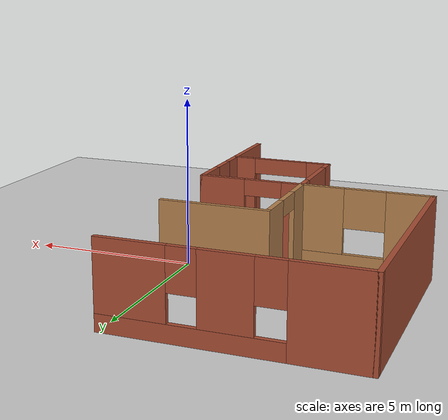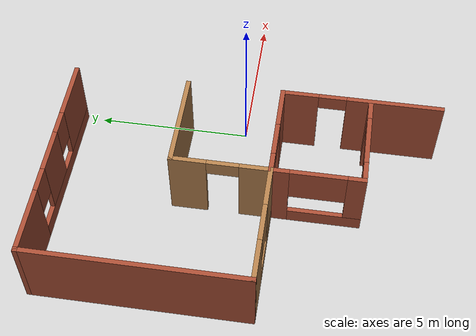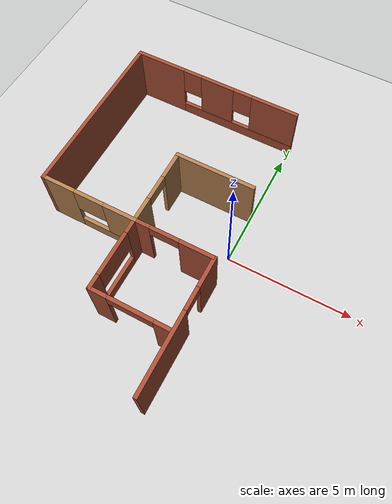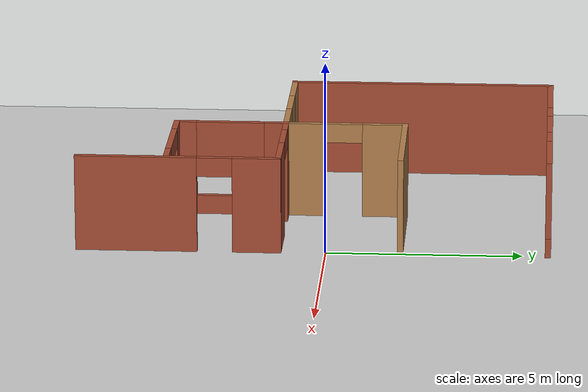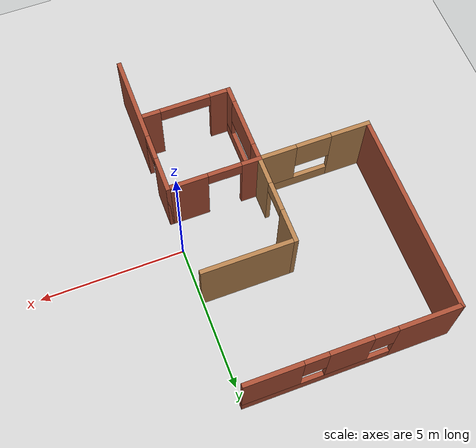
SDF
<sdf version="1.7">
 <world name="default">
  <model name="ground_plane">
   <static>1</static>
   <link name="link">
    <collision name="collision">
     <geometry><plane><normal>0 0 1</normal><size>100 100</size></plane></geometry>
     <surface>
      <contact><collide_bitmask>65535</collide_bitmask></contact>
      <friction><ode><mu>100</mu><mu2>50</mu2></ode></friction>
     </surface>
    </collision>
    <visual name="visual">
     <cast_shadows>0</cast_shadows>
     <geometry><plane><normal>0 0 1</normal><size>100 100</size></plane></geometry>
     <material>
      <script><uri>file://media/materials/scripts/gazebo.material</uri><name>Gazebo/Grey</name></script>
     </material>
    </visual>
   </link>
  </model>
  <model name="basic_house_model">
   <link name="Wall_13">
    <pose>-6.05 2.55 0 0 0 -1.5708</pose>
    <visual name="Wall_13_Visual">
     <pose>0 0 1.25 0 -0 0</pose>
     <geometry><box><size>7 0.15 2.5</size></box></geometry>
     <material>
      <script><uri>file://media/materials/scripts/gazebo.material</uri><name>Gazebo/Bricks</name></script>
      <ambient>1 1 1 1</ambient>
      <shader type="pixel"/>
     </material>
     <meta><layer>0</layer></meta>
    </visual>
    <collision name="Wall_13_Collision">
     <pose>0 0 1.25 0 -0 0</pose>
     <geometry><box><size>7 0.15 2.5</size></box></geometry>
     <surface>
      <friction>
       <ode><mu>1</mu><mu2>1</mu2><fdir1>0 0 0</fdir1><slip1>0</slip1><slip2>0</slip2></ode>
       <torsional>
        <coefficient>1</coefficient>
        <patch_radius>0</patch_radius>
        <surface_radius>0</surface_radius>
        <use_patch_radius>1</use_patch_radius>
        <ode><slip>0</slip></ode>
       </torsional>
      </friction>
      <bounce><restitution_coefficient>0</restitution_coefficient><threshold>1e+06</threshold></bounce>
      <contact>
       <collide_without_contact>0</collide_without_contact>
       <collide_without_contact_bitmask>1</collide_without_contact_bitmask>
       <collide_bitmask>1</collide_bitmask>
       <ode>
        <soft_cfm>0</soft_cfm>
        <soft_erp>0.2</soft_erp>
        <kp>1e+13</kp>
        <kd>1</kd>
        <max_vel>0.01</max_vel>
        <min_depth>0</min_depth>
       </ode>
       <bullet>
        <split_impulse>1</split_impulse>
        <split_impulse_penetration_threshold>-0.01</split_impulse_penetration_threshold>
        <soft_cfm>0</soft_cfm>
        <soft_erp>0.2</soft_erp>
        <kp>1e+13</kp>
        <kd>1</kd>
       </bullet>
      </contact>
     </surface>
    </collision>
   </link>
   <link name="Wall_14">
    <pose>-4.125 -0.875 0 0 -0 0</pose>
    <visual name="Wall_14_Visual_0">
     <pose>-1.30014 0 1.25 0 -0 0</pose>
     <geometry><box><size>1.39972 0.15 2.5</size></box></geometry>
     <material>
      <script><uri>file://media/materials/scripts/gazebo.material</uri><name>Gazebo/Wood</name></script>
      <ambient>1 1 1 1</ambient>
      <shader type="pixel"/>
     </material>
     <meta><layer>0</layer></meta>
    </visual>
    <visual name="Wall_14_Visual_1">
     <pose>0.699859 0 0.25 0 -0 0</pose>
     <geometry><box><size>2.60028 0.15 0.5</size></box></geometry>
     <material>
      <script><uri>file://media/materials/scripts/gazebo.material</uri><name>Gazebo/Wood</name></script>
      <ambient>1 1 1 1</ambient>
      <shader type="pixel"/>
     </material>
     <meta><layer>0</layer></meta>
    </visual>
    <visual name="Wall_14_Visual_2">
     <pose>1.31418 0 1.5 0 -0 0</pose>
     <geometry><box><size>1.37164 0.15 2</size></box></geometry>
     <material>
      <script><uri>file://media/materials/scripts/gazebo.material</uri><name>Gazebo/Wood</name></script>
      <ambient>1 1 1 1</ambient>
      <shader type="pixel"/>
     </material>
     <meta><layer>0</layer></meta>
    </visual>
    <visual name="Wall_14_Visual_3">
     <pose>0.014039 0 1.9 0 -0 0</pose>
     <geometry><box><size>1.22864 0.15 1.2</size></box></geometry>
     <material>
      <script><uri>file://media/materials/scripts/gazebo.material</uri><name>Gazebo/Wood</name></script>
      <ambient>1 1 1 1</ambient>
      <shader type="pixel"/>
     </material>
     <meta><layer>0</layer></meta>
    </visual>
    <collision name="Wall_14_Collision_0">
     <pose>-1.30014 0 1.25 0 -0 0</pose>
     <geometry><box><size>1.39972 0.15 2.5</size></box></geometry>
     <surface>
      <friction>
       <ode><mu>1</mu><mu2>1</mu2><fdir1>0 0 0</fdir1><slip1>0</slip1><slip2>0</slip2></ode>
       <torsional>
        <coefficient>1</coefficient>
        <patch_radius>0</patch_radius>
        <surface_radius>0</surface_radius>
        <use_patch_radius>1</use_patch_radius>
        <ode><slip>0</slip></ode>
       </torsional>
      </friction>
      <bounce><restitution_coefficient>0</restitution_coefficient><threshold>1e+06</threshold></bounce>
      <contact>
       <collide_without_contact>0</collide_without_contact>
       <collide_without_contact_bitmask>1</collide_without_contact_bitmask>
       <collide_bitmask>1</collide_bitmask>
       <ode>
        <soft_cfm>0</soft_cfm>
        <soft_erp>0.2</soft_erp>
        <kp>1e+13</kp>
        <kd>1</kd>
        <max_vel>0.01</max_vel>
        <min_depth>0</min_depth>
       </ode>
       <bullet>
        <split_impulse>1</split_impulse>
        <split_impulse_penetration_threshold>-0.01</split_impulse_penetration_threshold>
        <soft_cfm>0</soft_cfm>
        <soft_erp>0.2</soft_erp>
        <kp>1e+13</kp>
        <kd>1</kd>
       </bullet>
      </contact>
     </surface>
    </collision>
    <collision name="Wall_14_Collision_1">
     <pose>0.699859 0 0.25 0 -0 0</pose>
     <geometry><box><size>2.60028 0.15 0.5</size></box></geometry>
     <surface>
      <friction>
       <ode><mu>1</mu><mu2>1</mu2><fdir1>0 0 0</fdir1><slip1>0</slip1><slip2>0</slip2></ode>
       <torsional>
        <coefficient>1</coefficient>
        <patch_radius>0</patch_radius>
        <surface_radius>0</surface_radius>
        <use_patch_radius>1</use_patch_radius>
        <ode><slip>0</slip></ode>
       </torsional>
      </friction>
      <bounce><restitution_coefficient>0</restitution_coefficient><threshold>1e+06</threshold></bounce>
      <contact>
       <collide_without_contact>0</collide_without_contact>
       <collide_without_contact_bitmask>1</collide_without_contact_bitmask>
       <collide_bitmask>1</collide_bitmask>
       <ode>
        <soft_cfm>0</soft_cfm>
        <soft_erp>0.2</soft_erp>
        <kp>1e+13</kp>
        <kd>1</kd>
        <max_vel>0.01</max_vel>
        <min_depth>0</min_depth>
       </ode>
       <bullet>
        <split_impulse>1</split_impulse>
        <split_impulse_penetration_threshold>-0.01</split_impulse_penetration_threshold>
        <soft_cfm>0</soft_cfm>
        <soft_erp>0.2</soft_erp>
        <kp>1e+13</kp>
        <kd>1</kd>
       </bullet>
      </contact>
     </surface>
    </collision>
    <collision name="Wall_14_Collision_2">
     <pose>1.31418 0 1.5 0 -0 0</pose>
     <geometry><box><size>1.37164 0.15 2</size></box></geometry>
     <surface>
      <friction>
       <ode><mu>1</mu><mu2>1</mu2><fdir1>0 0 0</fdir1><slip1>0</slip1><slip2>0</slip2></ode>
       <torsional>
        <coefficient>1</coefficient>
        <patch_radius>0</patch_radius>
        <surface_radius>0</surface_radius>
        <use_patch_radius>1</use_patch_radius>
        <ode><slip>0</slip></ode>
       </torsional>
      </friction>
      <bounce><restitution_coefficient>0</restitution_coefficient><threshold>1e+06</threshold></bounce>
      <contact>
       <collide_without_contact>0</collide_without_contact>
       <collide_without_contact_bitmask>1</collide_without_contact_bitmask>
       <collide_bitmask>1</collide_bitmask>
       <ode>
        <soft_cfm>0</soft_cfm>
        <soft_erp>0.2</soft_erp>
        <kp>1e+13</kp>
        <kd>1</kd>
        <max_vel>0.01</max_vel>
        <min_depth>0</min_depth>
       </ode>
       <bullet>
        <split_impulse>1</split_impulse>
        <split_impulse_penetration_threshold>-0.01</split_impulse_penetration_threshold>
        <soft_cfm>0</soft_cfm>
        <soft_erp>0.2</soft_erp>
        <kp>1e+13</kp>
        <kd>1</kd>
       </bullet>
      </contact>
     </surface>
    </collision>
    <collision name="Wall_14_Collision_3">
     <pose>0.014039 0 1.9 0 -0 0</pose>
     <geometry><box><size>1.22864 0.15 1.2</size></box></geometry>
     <surface>
      <friction>
       <ode><mu>1</mu><mu2>1</mu2><fdir1>0 0 0</fdir1><slip1>0</slip1><slip2>0</slip2></ode>
       <torsional>
        <coefficient>1</coefficient>
        <patch_radius>0</patch_radius>
        <surface_radius>0</surface_radius>
        <use_patch_radius>1</use_patch_radius>
        <ode><slip>0</slip></ode>
       </torsional>
      </friction>
      <bounce><restitution_coefficient>0</restitution_coefficient><threshold>1e+06</threshold></bounce>
      <contact>
       <collide_without_contact>0</collide_without_contact>
       <collide_without_contact_bitmask>1</collide_without_contact_bitmask>
       <collide_bitmask>1</collide_bitmask>
       <ode>
        <soft_cfm>0</soft_cfm>
        <soft_erp>0.2</soft_erp>
        <kp>1e+13</kp>
        <kd>1</kd>
        <max_vel>0.01</max_vel>
        <min_depth>0</min_depth>
       </ode>
       <bullet>
        <split_impulse>1</split_impulse>
        <split_impulse_penetration_threshold>-0.01</split_impulse_penetration_threshold>
        <soft_cfm>0</soft_cfm>
        <soft_erp>0.2</soft_erp>
        <kp>1e+13</kp>
        <kd>1</kd>
       </bullet>
      </contact>
     </surface>
    </collision>
   </link>
   <link name="Wall_15">
    <pose>-2.2 0.675 0 0 -0 1.5708</pose>
    <visual name="Wall_15_Visual_0">
     <pose>-1.10266 0 1.25 0 -0 0</pose>
     <geometry><box><size>1.04468 0.15 2.5</size></box></geometry>
     <material>
      <script><uri>file://media/materials/scripts/gazebo.material</uri><name>Gazebo/Wood</name></script>
      <ambient>1 1 1 1</ambient>
      <shader type="pixel"/>
     </material>
     <meta><layer>0</layer></meta>
    </visual>
    <visual name="Wall_15_Visual_1">
     <pose>1.03215 0 1.25 0 -0 0</pose>
     <geometry><box><size>1.1857 0.15 2.5</size></box></geometry>
     <material>
      <script><uri>file://media/materials/scripts/gazebo.material</uri><name>Gazebo/Wood</name></script>
      <ambient>1 1 1 1</ambient>
      <shader type="pixel"/>
     </material>
     <meta><layer>0</layer></meta>
    </visual>
    <visual name="Wall_15_Visual_2">
     <pose>-0.070509 0 2.25 0 -0 0</pose>
     <geometry><box><size>1.01962 0.15 0.5</size></box></geometry>
     <material>
      <script><uri>file://media/materials/scripts/gazebo.material</uri><name>Gazebo/Wood</name></script>
      <ambient>1 1 1 1</ambient>
      <shader type="pixel"/>
     </material>
     <meta><layer>0</layer></meta>
    </visual>
    <collision name="Wall_15_Collision_0">
     <pose>-1.10266 0 1.25 0 -0 0</pose>
     <geometry><box><size>1.04468 0.15 2.5</size></box></geometry>
     <surface>
      <friction>
       <ode><mu>1</mu><mu2>1</mu2><fdir1>0 0 0</fdir1><slip1>0</slip1><slip2>0</slip2></ode>
       <torsional>
        <coefficient>1</coefficient>
        <patch_radius>0</patch_radius>
        <surface_radius>0</surface_radius>
        <use_patch_radius>1</use_patch_radius>
        <ode><slip>0</slip></ode>
       </torsional>
      </friction>
      <bounce><restitution_coefficient>0</restitution_coefficient><threshold>1e+06</threshold></bounce>
      <contact>
       <collide_without_contact>0</collide_without_contact>
       <collide_without_contact_bitmask>1</collide_without_contact_bitmask>
       <collide_bitmask>1</collide_bitmask>
       <ode>
        <soft_cfm>0</soft_cfm>
        <soft_erp>0.2</soft_erp>
        <kp>1e+13</kp>
        <kd>1</kd>
        <max_vel>0.01</max_vel>
        <min_depth>0</min_depth>
       </ode>
       <bullet>
        <split_impulse>1</split_impulse>
        <split_impulse_penetration_threshold>-0.01</split_impulse_penetration_threshold>
        <soft_cfm>0</soft_cfm>
        <soft_erp>0.2</soft_erp>
        <kp>1e+13</kp>
        <kd>1</kd>
       </bullet>
      </contact>
     </surface>
    </collision>
    <collision name="Wall_15_Collision_1">
     <pose>1.03215 0 1.25 0 -0 0</pose>
     <geometry><box><size>1.1857 0.15 2.5</size></box></geometry>
     <surface>
      <friction>
       <ode><mu>1</mu><mu2>1</mu2><fdir1>0 0 0</fdir1><slip1>0</slip1><slip2>0</slip2></ode>
       <torsional>
        <coefficient>1</coefficient>
        <patch_radius>0</patch_radius>
        <surface_radius>0</surface_radius>
        <use_patch_radius>1</use_patch_radius>
        <ode><slip>0</slip></ode>
       </torsional>
      </friction>
      <bounce><restitution_coefficient>0</restitution_coefficient><threshold>1e+06</threshold></bounce>
      <contact>
       <collide_without_contact>0</collide_without_contact>
       <collide_without_contact_bitmask>1</collide_without_contact_bitmask>
       <collide_bitmask>1</collide_bitmask>
       <ode>
        <soft_cfm>0</soft_cfm>
        <soft_erp>0.2</soft_erp>
        <kp>1e+13</kp>
        <kd>1</kd>
        <max_vel>0.01</max_vel>
        <min_depth>0</min_depth>
       </ode>
       <bullet>
        <split_impulse>1</split_impulse>
        <split_impulse_penetration_threshold>-0.01</split_impulse_penetration_threshold>
        <soft_cfm>0</soft_cfm>
        <soft_erp>0.2</soft_erp>
        <kp>1e+13</kp>
        <kd>1</kd>
       </bullet>
      </contact>
     </surface>
    </collision>
    <collision name="Wall_15_Collision_2">
     <pose>-0.070509 0 2.25 0 -0 0</pose>
     <geometry><box><size>1.01962 0.15 0.5</size></box></geometry>
     <surface>
      <friction>
       <ode><mu>1</mu><mu2>1</mu2><fdir1>0 0 0</fdir1><slip1>0</slip1><slip2>0</slip2></ode>
       <torsional>
        <coefficient>1</coefficient>
        <patch_radius>0</patch_radius>
        <surface_radius>0</surface_radius>
        <use_patch_radius>1</use_patch_radius>
        <ode><slip>0</slip></ode>
       </torsional>
      </friction>
      <bounce><restitution_coefficient>0</restitution_coefficient><threshold>1e+06</threshold></bounce>
      <contact>
       <collide_without_contact>0</collide_without_contact>
       <collide_without_contact_bitmask>1</collide_without_contact_bitmask>
       <collide_bitmask>1</collide_bitmask>
       <ode>
        <soft_cfm>0</soft_cfm>
        <soft_erp>0.2</soft_erp>
        <kp>1e+13</kp>
        <kd>1</kd>
        <max_vel>0.01</max_vel>
        <min_depth>0</min_depth>
       </ode>
       <bullet>
        <split_impulse>1</split_impulse>
        <split_impulse_penetration_threshold>-0.01</split_impulse_penetration_threshold>
        <soft_cfm>0</soft_cfm>
        <soft_erp>0.2</soft_erp>
        <kp>1e+13</kp>
        <kd>1</kd>
       </bullet>
      </contact>
     </surface>
    </collision>
   </link>
   <link name="Wall_16">
    <pose>-0.65 2.225 0 0 -0 0</pose>
    <visual name="Wall_16_Visual">
     <pose>0 0 1.25 0 -0 0</pose>
     <geometry><box><size>3.25 0.15 2.5</size></box></geometry>
     <material>
      <script><uri>file://media/materials/scripts/gazebo.material</uri><name>Gazebo/Wood</name></script>
      <ambient>1 1 1 1</ambient>
      <shader type="pixel"/>
     </material>
     <meta><layer>0</layer></meta>
    </visual>
    <collision name="Wall_16_Collision">
     <pose>0 0 1.25 0 -0 0</pose>
     <geometry><box><size>3.25 0.15 2.5</size></box></geometry>
     <surface>
      <friction>
       <ode><mu>1</mu><mu2>1</mu2><fdir1>0 0 0</fdir1><slip1>0</slip1><slip2>0</slip2></ode>
       <torsional>
        <coefficient>1</coefficient>
        <patch_radius>0</patch_radius>
        <surface_radius>0</surface_radius>
        <use_patch_radius>1</use_patch_radius>
        <ode><slip>0</slip></ode>
       </torsional>
      </friction>
      <bounce><restitution_coefficient>0</restitution_coefficient><threshold>1e+06</threshold></bounce>
      <contact>
       <collide_without_contact>0</collide_without_contact>
       <collide_without_contact_bitmask>1</collide_without_contact_bitmask>
       <collide_bitmask>1</collide_bitmask>
       <ode>
        <soft_cfm>0</soft_cfm>
        <soft_erp>0.2</soft_erp>
        <kp>1e+13</kp>
        <kd>1</kd>
        <max_vel>0.01</max_vel>
        <min_depth>0</min_depth>
       </ode>
       <bullet>
        <split_impulse>1</split_impulse>
        <split_impulse_penetration_threshold>-0.01</split_impulse_penetration_threshold>
        <soft_cfm>0</soft_cfm>
        <soft_erp>0.2</soft_erp>
        <kp>1e+13</kp>
        <kd>1</kd>
       </bullet>
      </contact>
     </surface>
    </collision>
   </link>
   <link name="Wall_18">
    <pose>-0.625 -0.875 0 0 -0 0</pose>
    <visual name="Wall_18_Visual_0">
     <pose>-1.3026 0 1.25 0 -0 0</pose>
     <geometry><box><size>0.694802 0.15 2.5</size></box></geometry>
     <material>
      <script><uri>file://media/materials/scripts/gazebo.material</uri><name>Gazebo/Bricks</name></script>
      <ambient>1 1 1 1</ambient>
      <shader type="pixel"/>
     </material>
     <meta><layer>0</layer></meta>
    </visual>
    <visual name="Wall_18_Visual_1">
     <pose>0.929233 0 1.25 0 -0 0</pose>
     <geometry><box><size>1.44153 0.15 2.5</size></box></geometry>
     <material>
      <script><uri>file://media/materials/scripts/gazebo.material</uri><name>Gazebo/Bricks</name></script>
      <ambient>1 1 1 1</ambient>
      <shader type="pixel"/>
     </material>
     <meta><layer>0</layer></meta>
    </visual>
    <visual name="Wall_18_Visual_2">
     <pose>-0.373366 0 2.25 0 -0 0</pose>
     <geometry><box><size>1.16366 0.15 0.5</size></box></geometry>
     <material>
      <script><uri>file://media/materials/scripts/gazebo.material</uri><name>Gazebo/Bricks</name></script>
      <ambient>1 1 1 1</ambient>
      <shader type="pixel"/>
     </material>
     <meta><layer>0</layer></meta>
    </visual>
    <collision name="Wall_18_Collision_0">
     <pose>-1.3026 0 1.25 0 -0 0</pose>
     <geometry><box><size>0.694802 0.15 2.5</size></box></geometry>
     <surface>
      <friction>
       <ode><mu>1</mu><mu2>1</mu2><fdir1>0 0 0</fdir1><slip1>0</slip1><slip2>0</slip2></ode>
       <torsional>
        <coefficient>1</coefficient>
        <patch_radius>0</patch_radius>
        <surface_radius>0</surface_radius>
        <use_patch_radius>1</use_patch_radius>
        <ode><slip>0</slip></ode>
       </torsional>
      </friction>
      <bounce><restitution_coefficient>0</restitution_coefficient><threshold>1e+06</threshold></bounce>
      <contact>
       <collide_without_contact>0</collide_without_contact>
       <collide_without_contact_bitmask>1</collide_without_contact_bitmask>
       <collide_bitmask>1</collide_bitmask>
       <ode>
        <soft_cfm>0</soft_cfm>
        <soft_erp>0.2</soft_erp>
        <kp>1e+13</kp>
        <kd>1</kd>
        <max_vel>0.01</max_vel>
        <min_depth>0</min_depth>
       </ode>
       <bullet>
        <split_impulse>1</split_impulse>
        <split_impulse_penetration_threshold>-0.01</split_impulse_penetration_threshold>
        <soft_cfm>0</soft_cfm>
        <soft_erp>0.2</soft_erp>
        <kp>1e+13</kp>
        <kd>1</kd>
       </bullet>
      </contact>
     </surface>
    </collision>
    <collision name="Wall_18_Collision_1">
     <pose>0.929233 0 1.25 0 -0 0</pose>
     <geometry><box><size>1.44153 0.15 2.5</size></box></geometry>
     <surface>
      <friction>
       <ode><mu>1</mu><mu2>1</mu2><fdir1>0 0 0</fdir1><slip1>0</slip1><slip2>0</slip2></ode>
       <torsional>
        <coefficient>1</coefficient>
        <patch_radius>0</patch_radius>
        <surface_radius>0</surface_radius>
        <use_patch_radius>1</use_patch_radius>
        <ode><slip>0</slip></ode>
       </torsional>
      </friction>
      <bounce><restitution_coefficient>0</restitution_coefficient><threshold>1e+06</threshold></bounce>
      <contact>
       <collide_without_contact>0</collide_without_contact>
       <collide_without_contact_bitmask>1</collide_without_contact_bitmask>
       <collide_bitmask>1</collide_bitmask>
       <ode>
        <soft_cfm>0</soft_cfm>
        <soft_erp>0.2</soft_erp>
        <kp>1e+13</kp>
        <kd>1</kd>
        <max_vel>0.01</max_vel>
        <min_depth>0</min_depth>
       </ode>
       <bullet>
        <split_impulse>1</split_impulse>
        <split_impulse_penetration_threshold>-0.01</split_impulse_penetration_threshold>
        <soft_cfm>0</soft_cfm>
        <soft_erp>0.2</soft_erp>
        <kp>1e+13</kp>
        <kd>1</kd>
       </bullet>
      </contact>
     </surface>
    </collision>
    <collision name="Wall_18_Collision_2">
     <pose>-0.373366 0 2.25 0 -0 0</pose>
     <geometry><box><size>1.16366 0.15 0.5</size></box></geometry>
     <surface>
      <friction>
       <ode><mu>1</mu><mu2>1</mu2><fdir1>0 0 0</fdir1><slip1>0</slip1><slip2>0</slip2></ode>
       <torsional>
        <coefficient>1</coefficient>
        <patch_radius>0</patch_radius>
        <surface_radius>0</surface_radius>
        <use_patch_radius>1</use_patch_radius>
        <ode><slip>0</slip></ode>
       </torsional>
      </friction>
      <bounce><restitution_coefficient>0</restitution_coefficient><threshold>1e+06</threshold></bounce>
      <contact>
       <collide_without_contact>0</collide_without_contact>
       <collide_without_contact_bitmask>1</collide_without_contact_bitmask>
       <collide_bitmask>1</collide_bitmask>
       <ode>
        <soft_cfm>0</soft_cfm>
        <soft_erp>0.2</soft_erp>
        <kp>1e+13</kp>
        <kd>1</kd>
        <max_vel>0.01</max_vel>
        <min_depth>0</min_depth>
       </ode>
       <bullet>
        <split_impulse>1</split_impulse>
        <split_impulse_penetration_threshold>-0.01</split_impulse_penetration_threshold>
        <soft_cfm>0</soft_cfm>
        <soft_erp>0.2</soft_erp>
        <kp>1e+13</kp>
        <kd>1</kd>
       </bullet>
      </contact>
     </surface>
    </collision>
   </link>
   <link name="Wall_19">
    <pose>0.95 -3.425 0 0 0 -1.5708</pose>
    <visual name="Wall_19_Visual_0">
     <pose>-2.00386 0 1.25 0 -0 0</pose>
     <geometry><box><size>1.24228 0.15 2.5</size></box></geometry>
     <material>
      <script><uri>file://media/materials/scripts/gazebo.material</uri><name>Gazebo/Bricks</name></script>
      <ambient>1 1 1 1</ambient>
      <shader type="pixel"/>
     </material>
     <meta><layer>0</layer></meta>
    </visual>
    <visual name="Wall_19_Visual_1">
     <pose>1.07114 0 1.25 0 -0 0</pose>
     <geometry><box><size>3.10772 0.15 2.5</size></box></geometry>
     <material>
      <script><uri>file://media/materials/scripts/gazebo.material</uri><name>Gazebo/Bricks</name></script>
      <ambient>1 1 1 1</ambient>
      <shader type="pixel"/>
     </material>
     <meta><layer>0</layer></meta>
    </visual>
    <visual name="Wall_19_Visual_2">
     <pose>-0.932718 0 2.25 0 -0 0</pose>
     <geometry><box><size>0.9 0.15 0.5</size></box></geometry>
     <material>
      <script><uri>file://media/materials/scripts/gazebo.material</uri><name>Gazebo/Bricks</name></script>
      <ambient>1 1 1 1</ambient>
      <shader type="pixel"/>
     </material>
     <meta><layer>0</layer></meta>
    </visual>
    <collision name="Wall_19_Collision_0">
     <pose>-2.00386 0 1.25 0 -0 0</pose>
     <geometry><box><size>1.24228 0.15 2.5</size></box></geometry>
     <surface>
      <friction>
       <ode><mu>1</mu><mu2>1</mu2><fdir1>0 0 0</fdir1><slip1>0</slip1><slip2>0</slip2></ode>
       <torsional>
        <coefficient>1</coefficient>
        <patch_radius>0</patch_radius>
        <surface_radius>0</surface_radius>
        <use_patch_radius>1</use_patch_radius>
        <ode><slip>0</slip></ode>
       </torsional>
      </friction>
      <bounce><restitution_coefficient>0</restitution_coefficient><threshold>1e+06</threshold></bounce>
      <contact>
       <collide_without_contact>0</collide_without_contact>
       <collide_without_contact_bitmask>1</collide_without_contact_bitmask>
       <collide_bitmask>1</collide_bitmask>
       <ode>
        <soft_cfm>0</soft_cfm>
        <soft_erp>0.2</soft_erp>
        <kp>1e+13</kp>
        <kd>1</kd>
        <max_vel>0.01</max_vel>
        <min_depth>0</min_depth>
       </ode>
       <bullet>
        <split_impulse>1</split_impulse>
        <split_impulse_penetration_threshold>-0.01</split_impulse_penetration_threshold>
        <soft_cfm>0</soft_cfm>
        <soft_erp>0.2</soft_erp>
        <kp>1e+13</kp>
        <kd>1</kd>
       </bullet>
      </contact>
     </surface>
    </collision>
    <collision name="Wall_19_Collision_1">
     <pose>1.07114 0 1.25 0 -0 0</pose>
     <geometry><box><size>3.10772 0.15 2.5</size></box></geometry>
     <surface>
      <friction>
       <ode><mu>1</mu><mu2>1</mu2><fdir1>0 0 0</fdir1><slip1>0</slip1><slip2>0</slip2></ode>
       <torsional>
        <coefficient>1</coefficient>
        <patch_radius>0</patch_radius>
        <surface_radius>0</surface_radius>
        <use_patch_radius>1</use_patch_radius>
        <ode><slip>0</slip></ode>
       </torsional>
      </friction>
      <bounce><restitution_coefficient>0</restitution_coefficient><threshold>1e+06</threshold></bounce>
      <contact>
       <collide_without_contact>0</collide_without_contact>
       <collide_without_contact_bitmask>1</collide_without_contact_bitmask>
       <collide_bitmask>1</collide_bitmask>
       <ode>
        <soft_cfm>0</soft_cfm>
        <soft_erp>0.2</soft_erp>
        <kp>1e+13</kp>
        <kd>1</kd>
        <max_vel>0.01</max_vel>
        <min_depth>0</min_depth>
       </ode>
       <bullet>
        <split_impulse>1</split_impulse>
        <split_impulse_penetration_threshold>-0.01</split_impulse_penetration_threshold>
        <soft_cfm>0</soft_cfm>
        <soft_erp>0.2</soft_erp>
        <kp>1e+13</kp>
        <kd>1</kd>
       </bullet>
      </contact>
     </surface>
    </collision>
    <collision name="Wall_19_Collision_2">
     <pose>-0.932718 0 2.25 0 -0 0</pose>
     <geometry><box><size>0.9 0.15 0.5</size></box></geometry>
     <surface>
      <friction>
       <ode><mu>1</mu><mu2>1</mu2><fdir1>0 0 0</fdir1><slip1>0</slip1><slip2>0</slip2></ode>
       <torsional>
        <coefficient>1</coefficient>
        <patch_radius>0</patch_radius>
        <surface_radius>0</surface_radius>
        <use_patch_radius>1</use_patch_radius>
        <ode><slip>0</slip></ode>
       </torsional>
      </friction>
      <bounce><restitution_coefficient>0</restitution_coefficient><threshold>1e+06</threshold></bounce>
      <contact>
       <collide_without_contact>0</collide_without_contact>
       <collide_without_contact_bitmask>1</collide_without_contact_bitmask>
       <collide_bitmask>1</collide_bitmask>
       <ode>
        <soft_cfm>0</soft_cfm>
        <soft_erp>0.2</soft_erp>
        <kp>1e+13</kp>
        <kd>1</kd>
        <max_vel>0.01</max_vel>
        <min_depth>0</min_depth>
       </ode>
       <bullet>
        <split_impulse>1</split_impulse>
        <split_impulse_penetration_threshold>-0.01</split_impulse_penetration_threshold>
        <soft_cfm>0</soft_cfm>
        <soft_erp>0.2</soft_erp>
        <kp>1e+13</kp>
        <kd>1</kd>
       </bullet>
      </contact>
     </surface>
    </collision>
   </link>
   <link name="Wall_23">
    <pose>-2.2 -2.3 0 0 0 -1.5708</pose>
    <visual name="Wall_23_Visual_0">
     <pose>-1.1761 0 1.25 0 -0 0</pose>
     <geometry><box><size>0.647796 0.15 2.5</size></box></geometry>
     <material>
      <script><uri>file://media/materials/scripts/gazebo.material</uri><name>Gazebo/Bricks</name></script>
      <ambient>1 1 1 1</ambient>
      <shader type="pixel"/>
     </material>
     <meta><layer>0</layer></meta>
    </visual>
    <visual name="Wall_23_Visual_1">
     <pose>0.323898 0 0.25 0 -0 0</pose>
     <geometry><box><size>2.3522 0.15 0.5</size></box></geometry>
     <material>
      <script><uri>file://media/materials/scripts/gazebo.material</uri><name>Gazebo/Bricks</name></script>
      <ambient>1 1 1 1</ambient>
      <shader type="pixel"/>
     </material>
     <meta><layer>0</layer></meta>
    </visual>
    <visual name="Wall_23_Visual_2">
     <pose>1.20508 0 1.5 0 -0 0</pose>
     <geometry><box><size>0.589831 0.15 2</size></box></geometry>
     <material>
      <script><uri>file://media/materials/scripts/gazebo.material</uri><name>Gazebo/Bricks</name></script>
      <ambient>1 1 1 1</ambient>
      <shader type="pixel"/>
     </material>
     <meta><layer>0</layer></meta>
    </visual>
    <visual name="Wall_23_Visual_3">
     <pose>0.028983 0 1.9 0 -0 0</pose>
     <geometry><box><size>1.76237 0.15 1.2</size></box></geometry>
     <material>
      <script><uri>file://media/materials/scripts/gazebo.material</uri><name>Gazebo/Bricks</name></script>
      <ambient>1 1 1 1</ambient>
      <shader type="pixel"/>
     </material>
     <meta><layer>0</layer></meta>
    </visual>
    <collision name="Wall_23_Collision_0">
     <pose>-1.1761 0 1.25 0 -0 0</pose>
     <geometry><box><size>0.647796 0.15 2.5</size></box></geometry>
     <surface>
      <friction>
       <ode><mu>1</mu><mu2>1</mu2><fdir1>0 0 0</fdir1><slip1>0</slip1><slip2>0</slip2></ode>
       <torsional>
        <coefficient>1</coefficient>
        <patch_radius>0</patch_radius>
        <surface_radius>0</surface_radius>
        <use_patch_radius>1</use_patch_radius>
        <ode><slip>0</slip></ode>
       </torsional>
      </friction>
      <bounce><restitution_coefficient>0</restitution_coefficient><threshold>1e+06</threshold></bounce>
      <contact>
       <collide_without_contact>0</collide_without_contact>
       <collide_without_contact_bitmask>1</collide_without_contact_bitmask>
       <collide_bitmask>1</collide_bitmask>
       <ode>
        <soft_cfm>0</soft_cfm>
        <soft_erp>0.2</soft_erp>
        <kp>1e+13</kp>
        <kd>1</kd>
        <max_vel>0.01</max_vel>
        <min_depth>0</min_depth>
       </ode>
       <bullet>
        <split_impulse>1</split_impulse>
        <split_impulse_penetration_threshold>-0.01</split_impulse_penetration_threshold>
        <soft_cfm>0</soft_cfm>
        <soft_erp>0.2</soft_erp>
        <kp>1e+13</kp>
        <kd>1</kd>
       </bullet>
      </contact>
     </surface>
    </collision>
    <collision name="Wall_23_Collision_1">
     <pose>0.323898 0 0.25 0 -0 0</pose>
     <geometry><box><size>2.3522 0.15 0.5</size></box></geometry>
     <surface>
      <friction>
       <ode><mu>1</mu><mu2>1</mu2><fdir1>0 0 0</fdir1><slip1>0</slip1><slip2>0</slip2></ode>
       <torsional>
        <coefficient>1</coefficient>
        <patch_radius>0</patch_radius>
        <surface_radius>0</surface_radius>
        <use_patch_radius>1</use_patch_radius>
        <ode><slip>0</slip></ode>
       </torsional>
      </friction>
      <bounce><restitution_coefficient>0</restitution_coefficient><threshold>1e+06</threshold></bounce>
      <contact>
       <collide_without_contact>0</collide_without_contact>
       <collide_without_contact_bitmask>1</collide_without_contact_bitmask>
       <collide_bitmask>1</collide_bitmask>
       <ode>
        <soft_cfm>0</soft_cfm>
        <soft_erp>0.2</soft_erp>
        <kp>1e+13</kp>
        <kd>1</kd>
        <max_vel>0.01</max_vel>
        <min_depth>0</min_depth>
       </ode>
       <bullet>
        <split_impulse>1</split_impulse>
        <split_impulse_penetration_threshold>-0.01</split_impulse_penetration_threshold>
        <soft_cfm>0</soft_cfm>
        <soft_erp>0.2</soft_erp>
        <kp>1e+13</kp>
        <kd>1</kd>
       </bullet>
      </contact>
     </surface>
    </collision>
    <collision name="Wall_23_Collision_2">
     <pose>1.20508 0 1.5 0 -0 0</pose>
     <geometry><box><size>0.589831 0.15 2</size></box></geometry>
     <surface>
      <friction>
       <ode><mu>1</mu><mu2>1</mu2><fdir1>0 0 0</fdir1><slip1>0</slip1><slip2>0</slip2></ode>
       <torsional>
        <coefficient>1</coefficient>
        <patch_radius>0</patch_radius>
        <surface_radius>0</surface_radius>
        <use_patch_radius>1</use_patch_radius>
        <ode><slip>0</slip></ode>
       </torsional>
      </friction>
      <bounce><restitution_coefficient>0</restitution_coefficient><threshold>1e+06</threshold></bounce>
      <contact>
       <collide_without_contact>0</collide_without_contact>
       <collide_without_contact_bitmask>1</collide_without_contact_bitmask>
       <collide_bitmask>1</collide_bitmask>
       <ode>
        <soft_cfm>0</soft_cfm>
        <soft_erp>0.2</soft_erp>
        <kp>1e+13</kp>
        <kd>1</kd>
        <max_vel>0.01</max_vel>
        <min_depth>0</min_depth>
       </ode>
       <bullet>
        <split_impulse>1</split_impulse>
        <split_impulse_penetration_threshold>-0.01</split_impulse_penetration_threshold>
        <soft_cfm>0</soft_cfm>
        <soft_erp>0.2</soft_erp>
        <kp>1e+13</kp>
        <kd>1</kd>
       </bullet>
      </contact>
     </surface>
    </collision>
    <collision name="Wall_23_Collision_3">
     <pose>0.028983 0 1.9 0 -0 0</pose>
     <geometry><box><size>1.76237 0.15 1.2</size></box></geometry>
     <surface>
      <friction>
       <ode><mu>1</mu><mu2>1</mu2><fdir1>0 0 0</fdir1><slip1>0</slip1><slip2>0</slip2></ode>
       <torsional>
        <coefficient>1</coefficient>
        <patch_radius>0</patch_radius>
        <surface_radius>0</surface_radius>
        <use_patch_radius>1</use_patch_radius>
        <ode><slip>0</slip></ode>
       </torsional>
      </friction>
      <bounce><restitution_coefficient>0</restitution_coefficient><threshold>1e+06</threshold></bounce>
      <contact>
       <collide_without_contact>0</collide_without_contact>
       <collide_without_contact_bitmask>1</collide_without_contact_bitmask>
       <collide_bitmask>1</collide_bitmask>
       <ode>
        <soft_cfm>0</soft_cfm>
        <soft_erp>0.2</soft_erp>
        <kp>1e+13</kp>
        <kd>1</kd>
        <max_vel>0.01</max_vel>
        <min_depth>0</min_depth>
       </ode>
       <bullet>
        <split_impulse>1</split_impulse>
        <split_impulse_penetration_threshold>-0.01</split_impulse_penetration_threshold>
        <soft_cfm>0</soft_cfm>
        <soft_erp>0.2</soft_erp>
        <kp>1e+13</kp>
        <kd>1</kd>
       </bullet>
      </contact>
     </surface>
    </collision>
   </link>
   <link name="Wall_24">
    <pose>-0.65 -3.725 0 0 -0 0</pose>
    <visual name="Wall_24_Visual_0">
     <pose>-1.24412 0 1.25 0 -0 0</pose>
     <geometry><box><size>0.761761 0.15 2.5</size></box></geometry>
     <material>
      <script><uri>file://media/materials/scripts/gazebo.material</uri><name>Gazebo/Bricks</name></script>
      <ambient>1 1 1 1</ambient>
      <shader type="pixel"/>
     </material>
     <meta><layer>0</layer></meta>
    </visual>
    <visual name="Wall_24_Visual_1">
     <pose>1.25933 0 1.25 0 -0 0</pose>
     <geometry><box><size>0.731332 0.15 2.5</size></box></geometry>
     <material>
      <script><uri>file://media/materials/scripts/gazebo.material</uri><name>Gazebo/Bricks</name></script>
      <ambient>1 1 1 1</ambient>
      <shader type="pixel"/>
     </material>
     <meta><layer>0</layer></meta>
    </visual>
    <visual name="Wall_24_Visual_2">
     <pose>0.015215 0 2.25 0 -0 0</pose>
     <geometry><box><size>1.75691 0.15 0.5</size></box></geometry>
     <material>
      <script><uri>file://media/materials/scripts/gazebo.material</uri><name>Gazebo/Bricks</name></script>
      <ambient>1 1 1 1</ambient>
      <shader type="pixel"/>
     </material>
     <meta><layer>0</layer></meta>
    </visual>
    <collision name="Wall_24_Collision_0">
     <pose>-1.24412 0 1.25 0 -0 0</pose>
     <geometry><box><size>0.761761 0.15 2.5</size></box></geometry>
     <surface>
      <friction>
       <ode><mu>1</mu><mu2>1</mu2><fdir1>0 0 0</fdir1><slip1>0</slip1><slip2>0</slip2></ode>
       <torsional>
        <coefficient>1</coefficient>
        <patch_radius>0</patch_radius>
        <surface_radius>0</surface_radius>
        <use_patch_radius>1</use_patch_radius>
        <ode><slip>0</slip></ode>
       </torsional>
      </friction>
      <bounce><restitution_coefficient>0</restitution_coefficient><threshold>1e+06</threshold></bounce>
      <contact>
       <collide_without_contact>0</collide_without_contact>
       <collide_without_contact_bitmask>1</collide_without_contact_bitmask>
       <collide_bitmask>1</collide_bitmask>
       <ode>
        <soft_cfm>0</soft_cfm>
        <soft_erp>0.2</soft_erp>
        <kp>1e+13</kp>
        <kd>1</kd>
        <max_vel>0.01</max_vel>
        <min_depth>0</min_depth>
       </ode>
       <bullet>
        <split_impulse>1</split_impulse>
        <split_impulse_penetration_threshold>-0.01</split_impulse_penetration_threshold>
        <soft_cfm>0</soft_cfm>
        <soft_erp>0.2</soft_erp>
        <kp>1e+13</kp>
        <kd>1</kd>
       </bullet>
      </contact>
     </surface>
    </collision>
    <collision name="Wall_24_Collision_1">
     <pose>1.25933 0 1.25 0 -0 0</pose>
     <geometry><box><size>0.731332 0.15 2.5</size></box></geometry>
     <surface>
      <friction>
       <ode><mu>1</mu><mu2>1</mu2><fdir1>0 0 0</fdir1><slip1>0</slip1><slip2>0</slip2></ode>
       <torsional>
        <coefficient>1</coefficient>
        <patch_radius>0</patch_radius>
        <surface_radius>0</surface_radius>
        <use_patch_radius>1</use_patch_radius>
        <ode><slip>0</slip></ode>
       </torsional>
      </friction>
      <bounce><restitution_coefficient>0</restitution_coefficient><threshold>1e+06</threshold></bounce>
      <contact>
       <collide_without_contact>0</collide_without_contact>
       <collide_without_contact_bitmask>1</collide_without_contact_bitmask>
       <collide_bitmask>1</collide_bitmask>
       <ode>
        <soft_cfm>0</soft_cfm>
        <soft_erp>0.2</soft_erp>
        <kp>1e+13</kp>
        <kd>1</kd>
        <max_vel>0.01</max_vel>
        <min_depth>0</min_depth>
       </ode>
       <bullet>
        <split_impulse>1</split_impulse>
        <split_impulse_penetration_threshold>-0.01</split_impulse_penetration_threshold>
        <soft_cfm>0</soft_cfm>
        <soft_erp>0.2</soft_erp>
        <kp>1e+13</kp>
        <kd>1</kd>
       </bullet>
      </contact>
     </surface>
    </collision>
    <collision name="Wall_24_Collision_2">
     <pose>0.015215 0 2.25 0 -0 0</pose>
     <geometry><box><size>1.75691 0.15 0.5</size></box></geometry>
     <surface>
      <friction>
       <ode><mu>1</mu><mu2>1</mu2><fdir1>0 0 0</fdir1><slip1>0</slip1><slip2>0</slip2></ode>
       <torsional>
        <coefficient>1</coefficient>
        <patch_radius>0</patch_radius>
        <surface_radius>0</surface_radius>
        <use_patch_radius>1</use_patch_radius>
        <ode><slip>0</slip></ode>
       </torsional>
      </friction>
      <bounce><restitution_coefficient>0</restitution_coefficient><threshold>1e+06</threshold></bounce>
      <contact>
       <collide_without_contact>0</collide_without_contact>
       <collide_without_contact_bitmask>1</collide_without_contact_bitmask>
       <collide_bitmask>1</collide_bitmask>
       <ode>
        <soft_cfm>0</soft_cfm>
        <soft_erp>0.2</soft_erp>
        <kp>1e+13</kp>
        <kd>1</kd>
        <max_vel>0.01</max_vel>
        <min_depth>0</min_depth>
       </ode>
       <bullet>
        <split_impulse>1</split_impulse>
        <split_impulse_penetration_threshold>-0.01</split_impulse_penetration_threshold>
        <soft_cfm>0</soft_cfm>
        <soft_erp>0.2</soft_erp>
        <kp>1e+13</kp>
        <kd>1</kd>
       </bullet>
      </contact>
     </surface>
    </collision>
   </link>
   <link name="Wall_26">
    <pose>-2.55 5.975 0 0 -0 0</pose>
    <visual name="Wall_26_Visual_0">
     <pose>-2.49982 0 1.25 0 -0 0</pose>
     <geometry><box><size>2.15036 0.15 2.5</size></box></geometry>
     <material>
      <script><uri>file://media/materials/scripts/gazebo.material</uri><name>Gazebo/Bricks</name></script>
      <ambient>1 1 1 1</ambient>
      <shader type="pixel"/>
     </material>
     <meta><layer>0</layer></meta>
    </visual>
    <visual name="Wall_26_Visual_1">
     <pose>1.07518 0 0.25 0 -0 0</pose>
     <geometry><box><size>4.99964 0.15 0.5</size></box></geometry>
     <material>
      <script><uri>file://media/materials/scripts/gazebo.material</uri><name>Gazebo/Bricks</name></script>
      <ambient>1 1 1 1</ambient>
      <shader type="pixel"/>
     </material>
     <meta><layer>0</layer></meta>
    </visual>
    <visual name="Wall_26_Visual_2">
     <pose>0.095935 0 1.5 0 -0 0</pose>
     <geometry><box><size>1.44114 0.15 2</size></box></geometry>
     <material>
      <script><uri>file://media/materials/scripts/gazebo.material</uri><name>Gazebo/Bricks</name></script>
      <ambient>1 1 1 1</ambient>
      <shader type="pixel"/>
     </material>
     <meta><layer>0</layer></meta>
    </visual>
    <visual name="Wall_26_Visual_3">
     <pose>2.59575 0 1.5 0 -0 0</pose>
     <geometry><box><size>1.95849 0.15 2</size></box></geometry>
     <material>
      <script><uri>file://media/materials/scripts/gazebo.material</uri><name>Gazebo/Bricks</name></script>
      <ambient>1 1 1 1</ambient>
      <shader type="pixel"/>
     </material>
     <meta><layer>0</layer></meta>
    </visual>
    <visual name="Wall_26_Visual_4">
     <pose>-1.02464 0 1.9 0 -0 0</pose>
     <geometry><box><size>0.8 0.15 1.2</size></box></geometry>
     <material>
      <script><uri>file://media/materials/scripts/gazebo.material</uri><name>Gazebo/Bricks</name></script>
      <ambient>1 1 1 1</ambient>
      <shader type="pixel"/>
     </material>
     <meta><layer>0</layer></meta>
    </visual>
    <visual name="Wall_26_Visual_5">
     <pose>1.21651 0 1.9 0 -0 0</pose>
     <geometry><box><size>0.8 0.15 1.2</size></box></geometry>
     <material>
      <script><uri>file://media/materials/scripts/gazebo.material</uri><name>Gazebo/Bricks</name></script>
      <ambient>1 1 1 1</ambient>
      <shader type="pixel"/>
     </material>
     <meta><layer>0</layer></meta>
    </visual>
    <collision name="Wall_26_Collision_0">
     <pose>-2.49982 0 1.25 0 -0 0</pose>
     <geometry><box><size>2.15036 0.15 2.5</size></box></geometry>
     <surface>
      <friction>
       <ode><mu>1</mu><mu2>1</mu2><fdir1>0 0 0</fdir1><slip1>0</slip1><slip2>0</slip2></ode>
       <torsional>
        <coefficient>1</coefficient>
        <patch_radius>0</patch_radius>
        <surface_radius>0</surface_radius>
        <use_patch_radius>1</use_patch_radius>
        <ode><slip>0</slip></ode>
       </torsional>
      </friction>
      <bounce><restitution_coefficient>0</restitution_coefficient><threshold>1e+06</threshold></bounce>
      <contact>
       <collide_without_contact>0</collide_without_contact>
       <collide_without_contact_bitmask>1</collide_without_contact_bitmask>
       <collide_bitmask>1</collide_bitmask>
       <ode>
        <soft_cfm>0</soft_cfm>
        <soft_erp>0.2</soft_erp>
        <kp>1e+13</kp>
        <kd>1</kd>
        <max_vel>0.01</max_vel>
        <min_depth>0</min_depth>
       </ode>
       <bullet>
        <split_impulse>1</split_impulse>
        <split_impulse_penetration_threshold>-0.01</split_impulse_penetration_threshold>
        <soft_cfm>0</soft_cfm>
        <soft_erp>0.2</soft_erp>
        <kp>1e+13</kp>
        <kd>1</kd>
       </bullet>
      </contact>
     </surface>
    </collision>
    <collision name="Wall_26_Collision_1">
     <pose>1.07518 0 0.25 0 -0 0</pose>
     <geometry><box><size>4.99964 0.15 0.5</size></box></geometry>
     <surface>
      <friction>
       <ode><mu>1</mu><mu2>1</mu2><fdir1>0 0 0</fdir1><slip1>0</slip1><slip2>0</slip2></ode>
       <torsional>
        <coefficient>1</coefficient>
        <patch_radius>0</patch_radius>
        <surface_radius>0</surface_radius>
        <use_patch_radius>1</use_patch_radius>
        <ode><slip>0</slip></ode>
       </torsional>
      </friction>
      <bounce><restitution_coefficient>0</restitution_coefficient><threshold>1e+06</threshold></bounce>
      <contact>
       <collide_without_contact>0</collide_without_contact>
       <collide_without_contact_bitmask>1</collide_without_contact_bitmask>
       <collide_bitmask>1</collide_bitmask>
       <ode>
        <soft_cfm>0</soft_cfm>
        <soft_erp>0.2</soft_erp>
        <kp>1e+13</kp>
        <kd>1</kd>
        <max_vel>0.01</max_vel>
        <min_depth>0</min_depth>
       </ode>
       <bullet>
        <split_impulse>1</split_impulse>
        <split_impulse_penetration_threshold>-0.01</split_impulse_penetration_threshold>
        <soft_cfm>0</soft_cfm>
        <soft_erp>0.2</soft_erp>
        <kp>1e+13</kp>
        <kd>1</kd>
       </bullet>
      </contact>
     </surface>
    </collision>
    <collision name="Wall_26_Collision_2">
     <pose>0.095935 0 1.5 0 -0 0</pose>
     <geometry><box><size>1.44114 0.15 2</size></box></geometry>
     <surface>
      <friction>
       <ode><mu>1</mu><mu2>1</mu2><fdir1>0 0 0</fdir1><slip1>0</slip1><slip2>0</slip2></ode>
       <torsional>
        <coefficient>1</coefficient>
        <patch_radius>0</patch_radius>
        <surface_radius>0</surface_radius>
        <use_patch_radius>1</use_patch_radius>
        <ode><slip>0</slip></ode>
       </torsional>
      </friction>
      <bounce><restitution_coefficient>0</restitution_coefficient><threshold>1e+06</threshold></bounce>
      <contact>
       <collide_without_contact>0</collide_without_contact>
       <collide_without_contact_bitmask>1</collide_without_contact_bitmask>
       <collide_bitmask>1</collide_bitmask>
       <ode>
        <soft_cfm>0</soft_cfm>
        <soft_erp>0.2</soft_erp>
        <kp>1e+13</kp>
        <kd>1</kd>
        <max_vel>0.01</max_vel>
        <min_depth>0</min_depth>
       </ode>
       <bullet>
        <split_impulse>1</split_impulse>
        <split_impulse_penetration_threshold>-0.01</split_impulse_penetration_threshold>
        <soft_cfm>0</soft_cfm>
        <soft_erp>0.2</soft_erp>
        <kp>1e+13</kp>
        <kd>1</kd>
       </bullet>
      </contact>
     </surface>
    </collision>
    <collision name="Wall_26_Collision_3">
     <pose>2.59575 0 1.5 0 -0 0</pose>
     <geometry><box><size>1.95849 0.15 2</size></box></geometry>
     <surface>
      <friction>
       <ode><mu>1</mu><mu2>1</mu2><fdir1>0 0 0</fdir1><slip1>0</slip1><slip2>0</slip2></ode>
       <torsional>
        <coefficient>1</coefficient>
        <patch_radius>0</patch_radius>
        <surface_radius>0</surface_radius>
        <use_patch_radius>1</use_patch_radius>
        <ode><slip>0</slip></ode>
       </torsional>
      </friction>
      <bounce><restitution_coefficient>0</restitution_coefficient><threshold>1e+06</threshold></bounce>
      <contact>
       <collide_without_contact>0</collide_without_contact>
       <collide_without_contact_bitmask>1</collide_without_contact_bitmask>
       <collide_bitmask>1</collide_bitmask>
       <ode>
        <soft_cfm>0</soft_cfm>
        <soft_erp>0.2</soft_erp>
        <kp>1e+13</kp>
        <kd>1</kd>
        <max_vel>0.01</max_vel>
        <min_depth>0</min_depth>
       </ode>
       <bullet>
        <split_impulse>1</split_impulse>
        <split_impulse_penetration_threshold>-0.01</split_impulse_penetration_threshold>
        <soft_cfm>0</soft_cfm>
        <soft_erp>0.2</soft_erp>
        <kp>1e+13</kp>
        <kd>1</kd>
       </bullet>
      </contact>
     </surface>
    </collision>
    <collision name="Wall_26_Collision_5">
     <pose>1.21651 0 1.9 0 -0 0</pose>
     <geometry><box><size>0.8 0.15 1.2</size></box></geometry>
     <surface>
      <friction>
       <ode><mu>1</mu><mu2>1</mu2><fdir1>0 0 0</fdir1><slip1>0</slip1><slip2>0</slip2></ode>
       <torsional>
        <coefficient>1</coefficient>
        <patch_radius>0</patch_radius>
        <surface_radius>0</surface_radius>
        <use_patch_radius>1</use_patch_radius>
        <ode><slip>0</slip></ode>
       </torsional>
      </friction>
      <bounce><restitution_coefficient>0</restitution_coefficient><threshold>1e+06</threshold></bounce>
      <contact>
       <collide_without_contact>0</collide_without_contact>
       <collide_without_contact_bitmask>1</collide_without_contact_bitmask>
       <collide_bitmask>1</collide_bitmask>
       <ode>
        <soft_cfm>0</soft_cfm>
        <soft_erp>0.2</soft_erp>
        <kp>1e+13</kp>
        <kd>1</kd>
        <max_vel>0.01</max_vel>
        <min_depth>0</min_depth>
       </ode>
       <bullet>
        <split_impulse>1</split_impulse>
        <split_impulse_penetration_threshold>-0.01</split_impulse_penetration_threshold>
        <soft_cfm>0</soft_cfm>
        <soft_erp>0.2</soft_erp>
        <kp>1e+13</kp>
        <kd>1</kd>
       </bullet>
      </contact>
     </surface>
    </collision>
    <collision name="Wall_26_Collision_4">
     <pose>-1.02464 0 1.9 0 -0 0</pose>
     <geometry><box><size>0.8 0.15 1.2</size></box></geometry>
     <surface>
      <friction>
       <ode><mu>1</mu><mu2>1</mu2><fdir1>0 0 0</fdir1><slip1>0</slip1><slip2>0</slip2></ode>
       <torsional>
        <coefficient>1</coefficient>
        <patch_radius>0</patch_radius>
        <surface_radius>0</surface_radius>
        <use_patch_radius>1</use_patch_radius>
        <ode><slip>0</slip></ode>
       </torsional>
      </friction>
      <bounce><restitution_coefficient>0</restitution_coefficient><threshold>1e+06</threshold></bounce>
      <contact>
       <collide_without_contact>0</collide_without_contact>
       <collide_without_contact_bitmask>1</collide_without_contact_bitmask>
       <collide_bitmask>1</collide_bitmask>
       <ode>
        <soft_cfm>0</soft_cfm>
        <soft_erp>0.2</soft_erp>
        <kp>1e+13</kp>
        <kd>1</kd>
        <max_vel>0.01</max_vel>
        <min_depth>0</min_depth>
       </ode>
       <bullet>
        <split_impulse>1</split_impulse>
        <split_impulse_penetration_threshold>-0.01</split_impulse_penetration_threshold>
        <soft_cfm>0</soft_cfm>
        <soft_erp>0.2</soft_erp>
        <kp>1e+13</kp>
        <kd>1</kd>
       </bullet>
      </contact>
     </surface>
    </collision>
   </link>
   <static>1</static>
   <pose>-0.94361 -0.326911 0 0 -0 0</pose>
  </model>
 </world>
</sdf>
